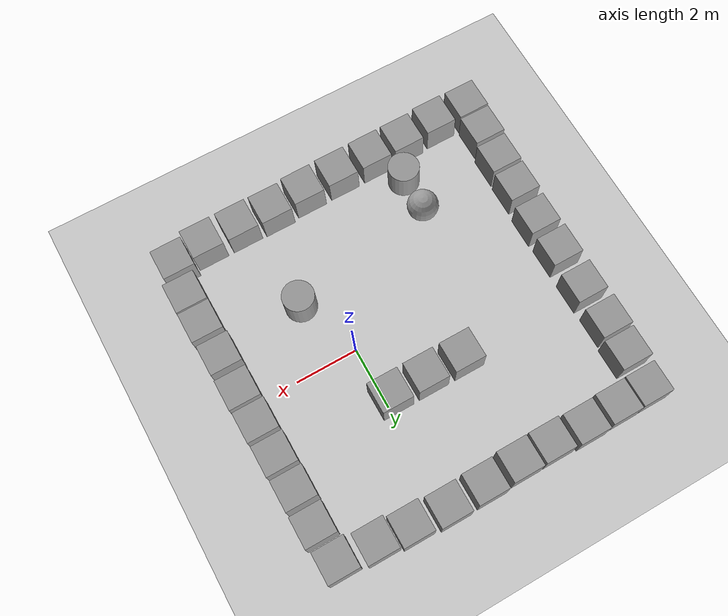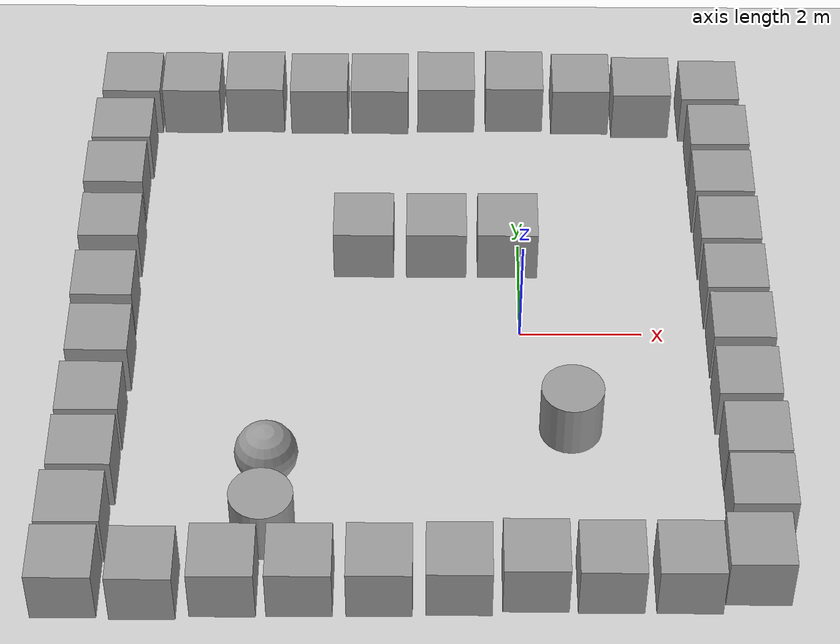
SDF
<sdf version="1.6">
 <world name="default">
  <model name="ground_plane">
   <static>1</static>
   <link name="link">
    <collision name="collision">
     <geometry><plane><normal>0 0 1</normal><size>100 100</size></plane></geometry>
     <surface>
      <contact><collide_bitmask>65535</collide_bitmask></contact>
      <friction><ode><mu>100</mu><mu2>50</mu2></ode></friction>
     </surface>
    </collision>
    <visual name="visual">
     <cast_shadows>0</cast_shadows>
     <geometry><plane><normal>0 0 1</normal><size>100 100</size></plane></geometry>
     <material>
      <script><uri>file://media/materials/scripts/gazebo.material</uri><name>Gazebo/Grey</name></script>
     </material>
    </visual>
   </link>
  </model>
  <light name="sun" type="directional">
   <pose>0 0 10 0 -0 0</pose>
   <diffuse>0.8 0.8 0.8 1</diffuse>
   <specular>0.2 0.2 0.2 1</specular>
   <attenuation>
    <range>1000</range>
    <constant>0.9</constant>
    <linear>0.01</linear>
    <quadratic>0.001</quadratic>
   </attenuation>
   <direction>-0.5 0.1 -0.9</direction>
  </light>
  <gravity>0 0 -9.8</gravity>
  <magnetic_field>6e-06 2.3e-05 -4.2e-05</magnetic_field>
  <atmosphere type="adiabatic"/>
  <physics name="default_physics" default="0" type="ode">
   <max_step_size>0.001</max_step_size>
   <real_time_factor>1</real_time_factor>
   <real_time_update_rate>1000</real_time_update_rate>
  </physics>
  <scene><ambient>0.4 0.4 0.4 1</ambient><background>0.7 0.7 0.7 1</background><shadows>1</shadows></scene>
  <audio><device>default</device></audio>
  <spherical_coordinates>
   <surface_model>EARTH_WGS84</surface_model>
   <latitude_deg>0</latitude_deg>
   <longitude_deg>0</longitude_deg>
   <elevation>0</elevation>
   <heading_deg>0</heading_deg>
  </spherical_coordinates>
  <model name="unit_box">
   <pose>-0.197704 1.77921 0.5 0 -0 0</pose>
   <link name="link">
    <inertial>
     <mass>1</mass>
     <inertia>
      <ixx>0.166667</ixx>
      <ixy>0</ixy>
      <ixz>0</ixz>
      <iyy>0.166667</iyy>
      <iyz>0</iyz>
      <izz>0.166667</izz>
     </inertia>
    </inertial>
    <collision name="collision"><geometry><box><size>1 1 1</size></box></geometry></collision>
    <visual name="visual">
     <geometry><box><size>1 1 1</size></box></geometry>
     <material>
      <script><name>Gazebo/Grey</name><uri>file://media/materials/scripts/gazebo.material</uri></script>
     </material>
    </visual>
   </link>
  </model>
  <model name="unit_cylinder">
   <pose>0.763981 -2.04884 0.499992 -3e-06 -4e-06 -0</pose>
   <link name="link">
    <inertial>
     <mass>1</mass>
     <inertia><ixx>0.145833</ixx><ixy>0</ixy><ixz>0</ixz><iyy>0.145833</iyy><iyz>0</iyz><izz>0.125</izz></inertia>
    </inertial>
    <collision name="collision">
     <geometry><cylinder><radius>0.5</radius><length>1</length></cylinder></geometry>
    </collision>
    <visual name="visual">
     <geometry><cylinder><radius>0.5</radius><length>1</length></cylinder></geometry>
     <material>
      <script><name>Gazebo/Grey</name><uri>file://media/materials/scripts/gazebo.material</uri></script>
     </material>
    </visual>
   </link>
  </model>
  <model name="unit_sphere">
   <pose>-4.03245 -2.96314 0.5 0 -0 0</pose>
   <link name="link">
    <inertial>
     <mass>1</mass>
     <inertia><ixx>0.1</ixx><ixy>0</ixy><ixz>0</ixz><iyy>0.1</iyy><iyz>0</iyz><izz>0.1</izz></inertia>
    </inertial>
    <collision name="collision"><geometry><sphere><radius>0.5</radius></sphere></geometry></collision>
    <visual name="visual">
     <geometry><sphere><radius>0.5</radius></sphere></geometry>
     <material>
      <script><name>Gazebo/Grey</name><uri>file://media/materials/scripts/gazebo.material</uri></script>
     </material>
    </visual>
   </link>
  </model>
  <model name="unit_box_0">
   <pose>-1.38779 1.77347 0.5 0 -0 0</pose>
   <link name="link">
    <inertial>
     <mass>1</mass>
     <inertia>
      <ixx>0.166667</ixx>
      <ixy>0</ixy>
      <ixz>0</ixz>
      <iyy>0.166667</iyy>
      <iyz>0</iyz>
      <izz>0.166667</izz>
     </inertia>
    </inertial>
    <collision name="collision"><geometry><box><size>1 1 1</size></box></geometry></collision>
    <visual name="visual">
     <geometry><box><size>1 1 1</size></box></geometry>
     <material>
      <script><name>Gazebo/Grey</name><uri>file://media/materials/scripts/gazebo.material</uri></script>
     </material>
    </visual>
   </link>
  </model>
  <model name="unit_box_1">
   <pose>-2.60241 1.77492 0.5 0 -0 0</pose>
   <link name="link">
    <inertial>
     <mass>1</mass>
     <inertia>
      <ixx>0.166667</ixx>
      <ixy>0</ixy>
      <ixz>0</ixz>
      <iyy>0.166667</iyy>
      <iyz>0</iyz>
      <izz>0.166667</izz>
     </inertia>
    </inertial>
    <collision name="collision"><geometry><box><size>1 1 1</size></box></geometry></collision>
    <visual name="visual">
     <geometry><box><size>1 1 1</size></box></geometry>
     <material>
      <script><name>Gazebo/Grey</name><uri>file://media/materials/scripts/gazebo.material</uri></script>
     </material>
    </visual>
   </link>
  </model>
  <model name="unit_box_2">
   <pose>3.55445 -0.448707 0.5 0 -0 0</pose>
   <link name="link">
    <inertial>
     <mass>1</mass>
     <inertia>
      <ixx>0.166667</ixx>
      <ixy>0</ixy>
      <ixz>0</ixz>
      <iyy>0.166667</iyy>
      <iyz>0</iyz>
      <izz>0.166667</izz>
     </inertia>
    </inertial>
    <collision name="collision"><geometry><box><size>1 1 1</size></box></geometry></collision>
    <visual name="visual">
     <geometry><box><size>1 1 1</size></box></geometry>
     <material>
      <script><name>Gazebo/Grey</name><uri>file://media/materials/scripts/gazebo.material</uri></script>
     </material>
    </visual>
   </link>
  </model>
  <model name="unit_box_3">
   <pose>3.52636 0.639737 0.5 0 -0 0</pose>
   <link name="link">
    <inertial>
     <mass>1</mass>
     <inertia>
      <ixx>0.166667</ixx>
      <ixy>0</ixy>
      <ixz>0</ixz>
      <iyy>0.166667</iyy>
      <iyz>0</iyz>
      <izz>0.166667</izz>
     </inertia>
    </inertial>
    <collision name="collision"><geometry><box><size>1 1 1</size></box></geometry></collision>
    <visual name="visual">
     <geometry><box><size>1 1 1</size></box></geometry>
     <material>
      <script><name>Gazebo/Grey</name><uri>file://media/materials/scripts/gazebo.material</uri></script>
     </material>
    </visual>
   </link>
  </model>
  <model name="unit_box_4">
   <pose>3.49864 1.75078 0.5 0 -0 0</pose>
   <link name="link">
    <inertial>
     <mass>1</mass>
     <inertia>
      <ixx>0.166667</ixx>
      <ixy>0</ixy>
      <ixz>0</ixz>
      <iyy>0.166667</iyy>
      <iyz>0</iyz>
      <izz>0.166667</izz>
     </inertia>
    </inertial>
    <collision name="collision"><geometry><box><size>1 1 1</size></box></geometry></collision>
    <visual name="visual">
     <geometry><box><size>1 1 1</size></box></geometry>
     <material>
      <script><name>Gazebo/Grey</name><uri>file://media/materials/scripts/gazebo.material</uri></script>
     </material>
    </visual>
   </link>
  </model>
  <model name="unit_box_5">
   <pose>3.47092 2.86175 0.5 0 -0 0</pose>
   <link name="link">
    <inertial>
     <mass>1</mass>
     <inertia>
      <ixx>0.166667</ixx>
      <ixy>0</ixy>
      <ixz>0</ixz>
      <iyy>0.166667</iyy>
      <iyz>0</iyz>
      <izz>0.166667</izz>
     </inertia>
    </inertial>
    <collision name="collision"><geometry><box><size>1 1 1</size></box></geometry></collision>
    <visual name="visual">
     <geometry><box><size>1 1 1</size></box></geometry>
     <material>
      <script><name>Gazebo/Grey</name><uri>file://media/materials/scripts/gazebo.material</uri></script>
     </material>
    </visual>
   </link>
  </model>
  <model name="unit_box_6">
   <pose>3.46785 4.00009 0.5 -0 -0 -0</pose>
   <link name="link">
    <inertial>
     <mass>1</mass>
     <inertia>
      <ixx>0.166667</ixx>
      <ixy>0</ixy>
      <ixz>0</ixz>
      <iyy>0.166667</iyy>
      <iyz>0</iyz>
      <izz>0.166667</izz>
     </inertia>
    </inertial>
    <collision name="collision"><geometry><box><size>1 1 1</size></box></geometry></collision>
    <visual name="visual">
     <geometry><box><size>1 1 1</size></box></geometry>
     <material>
      <script><name>Gazebo/Grey</name><uri>file://media/materials/scripts/gazebo.material</uri></script>
     </material>
    </visual>
   </link>
  </model>
  <model name="unit_box_7">
   <pose>3.37519 5.12977 0.5 -0 -0 -0</pose>
   <link name="link">
    <inertial>
     <mass>1</mass>
     <inertia>
      <ixx>0.166667</ixx>
      <ixy>0</ixy>
      <ixz>0</ixz>
      <iyy>0.166667</iyy>
      <iyz>0</iyz>
      <izz>0.166667</izz>
     </inertia>
    </inertial>
    <collision name="collision"><geometry><box><size>1 1 1</size></box></geometry></collision>
    <visual name="visual">
     <geometry><box><size>1 1 1</size></box></geometry>
     <material>
      <script><name>Gazebo/Grey</name><uri>file://media/materials/scripts/gazebo.material</uri></script>
     </material>
    </visual>
   </link>
  </model>
  <model name="unit_box_8">
   <pose>2.19768 5.21601 0.5 -0 -0 -0</pose>
   <link name="link">
    <inertial>
     <mass>1</mass>
     <inertia>
      <ixx>0.166667</ixx>
      <ixy>0</ixy>
      <ixz>0</ixz>
      <iyy>0.166667</iyy>
      <iyz>0</iyz>
      <izz>0.166667</izz>
     </inertia>
    </inertial>
    <collision name="collision"><geometry><box><size>1 1 1</size></box></geometry></collision>
    <visual name="visual">
     <geometry><box><size>1 1 1</size></box></geometry>
     <material>
      <script><name>Gazebo/Grey</name><uri>file://media/materials/scripts/gazebo.material</uri></script>
     </material>
    </visual>
   </link>
  </model>
  <model name="unit_box_9">
   <pose>1.13634 5.29939 0.5 0 -0 0</pose>
   <link name="link">
    <inertial>
     <mass>1</mass>
     <inertia>
      <ixx>0.166667</ixx>
      <ixy>0</ixy>
      <ixz>0</ixz>
      <iyy>0.166667</iyy>
      <iyz>0</iyz>
      <izz>0.166667</izz>
     </inertia>
    </inertial>
    <collision name="collision"><geometry><box><size>1 1 1</size></box></geometry></collision>
    <visual name="visual">
     <geometry><box><size>1 1 1</size></box></geometry>
     <material>
      <script><name>Gazebo/Grey</name><uri>file://media/materials/scripts/gazebo.material</uri></script>
     </material>
    </visual>
   </link>
  </model>
  <model name="unit_box_10">
   <pose>-0.025819 5.36379 0.5 0 -0 0</pose>
   <link name="link">
    <inertial>
     <mass>1</mass>
     <inertia>
      <ixx>0.166667</ixx>
      <ixy>0</ixy>
      <ixz>0</ixz>
      <iyy>0.166667</iyy>
      <iyz>0</iyz>
      <izz>0.166667</izz>
     </inertia>
    </inertial>
    <collision name="collision"><geometry><box><size>1 1 1</size></box></geometry></collision>
    <visual name="visual">
     <geometry><box><size>1 1 1</size></box></geometry>
     <material>
      <script><name>Gazebo/Grey</name><uri>file://media/materials/scripts/gazebo.material</uri></script>
     </material>
    </visual>
   </link>
  </model>
  <model name="unit_box_11">
   <pose>-1.2268 5.33765 0.5 0 -0 0</pose>
   <link name="link">
    <inertial>
     <mass>1</mass>
     <inertia>
      <ixx>0.166667</ixx>
      <ixy>0</ixy>
      <ixz>0</ixz>
      <iyy>0.166667</iyy>
      <iyz>0</iyz>
      <izz>0.166667</izz>
     </inertia>
    </inertial>
    <collision name="collision"><geometry><box><size>1 1 1</size></box></geometry></collision>
    <visual name="visual">
     <geometry><box><size>1 1 1</size></box></geometry>
     <material>
      <script><name>Gazebo/Grey</name><uri>file://media/materials/scripts/gazebo.material</uri></script>
     </material>
    </visual>
   </link>
  </model>
  <model name="unit_box_12">
   <pose>-2.39099 5.28828 0.5 0 -0 0</pose>
   <link name="link">
    <inertial>
     <mass>1</mass>
     <inertia>
      <ixx>0.166667</ixx>
      <ixy>0</ixy>
      <ixz>0</ixz>
      <iyy>0.166667</iyy>
      <iyz>0</iyz>
      <izz>0.166667</izz>
     </inertia>
    </inertial>
    <collision name="collision"><geometry><box><size>1 1 1</size></box></geometry></collision>
    <visual name="visual">
     <geometry><box><size>1 1 1</size></box></geometry>
     <material>
      <script><name>Gazebo/Grey</name><uri>file://media/materials/scripts/gazebo.material</uri></script>
     </material>
    </visual>
   </link>
  </model>
  <model name="unit_box_13">
   <pose>-3.45561 5.28239 0.5 0 -0 0</pose>
   <link name="link">
    <inertial>
     <mass>1</mass>
     <inertia>
      <ixx>0.166667</ixx>
      <ixy>0</ixy>
      <ixz>0</ixz>
      <iyy>0.166667</iyy>
      <iyz>0</iyz>
      <izz>0.166667</izz>
     </inertia>
    </inertial>
    <collision name="collision"><geometry><box><size>1 1 1</size></box></geometry></collision>
    <visual name="visual">
     <geometry><box><size>1 1 1</size></box></geometry>
     <material>
      <script><name>Gazebo/Grey</name><uri>file://media/materials/scripts/gazebo.material</uri></script>
     </material>
    </visual>
   </link>
  </model>
  <model name="unit_box_14">
   <pose>-4.58144 5.32082 0.5 -0 -0 -0</pose>
   <link name="link">
    <inertial>
     <mass>1</mass>
     <inertia>
      <ixx>0.166667</ixx>
      <ixy>0</ixy>
      <ixz>0</ixz>
      <iyy>0.166667</iyy>
      <iyz>0</iyz>
      <izz>0.166667</izz>
     </inertia>
    </inertial>
    <collision name="collision"><geometry><box><size>1 1 1</size></box></geometry></collision>
    <visual name="visual">
     <geometry><box><size>1 1 1</size></box></geometry>
     <material>
      <script><name>Gazebo/Grey</name><uri>file://media/materials/scripts/gazebo.material</uri></script>
     </material>
    </visual>
   </link>
  </model>
  <model name="unit_box_15">
   <pose>-5.692 5.29279 0.5 0 -0 0</pose>
   <link name="link">
    <inertial>
     <mass>1</mass>
     <inertia>
      <ixx>0.166667</ixx>
      <ixy>0</ixy>
      <ixz>0</ixz>
      <iyy>0.166667</iyy>
      <iyz>0</iyz>
      <izz>0.166667</izz>
     </inertia>
    </inertial>
    <collision name="collision"><geometry><box><size>1 1 1</size></box></geometry></collision>
    <visual name="visual">
     <geometry><box><size>1 1 1</size></box></geometry>
     <material>
      <script><name>Gazebo/Grey</name><uri>file://media/materials/scripts/gazebo.material</uri></script>
     </material>
    </visual>
   </link>
  </model>
  <model name="unit_box_16">
   <pose>-6.73412 5.28626 0.5 0 -0 0</pose>
   <link name="link">
    <inertial>
     <mass>1</mass>
     <inertia>
      <ixx>0.166667</ixx>
      <ixy>0</ixy>
      <ixz>0</ixz>
      <iyy>0.166667</iyy>
      <iyz>0</iyz>
      <izz>0.166667</izz>
     </inertia>
    </inertial>
    <collision name="collision"><geometry><box><size>1 1 1</size></box></geometry></collision>
    <visual name="visual">
     <geometry><box><size>1 1 1</size></box></geometry>
     <material>
      <script><name>Gazebo/Grey</name><uri>file://media/materials/scripts/gazebo.material</uri></script>
     </material>
    </visual>
   </link>
  </model>
  <model name="unit_box_17">
   <pose>-6.8132 4.10845 0.5 0 -0 0</pose>
   <link name="link">
    <inertial>
     <mass>1</mass>
     <inertia>
      <ixx>0.166667</ixx>
      <ixy>0</ixy>
      <ixz>0</ixz>
      <iyy>0.166667</iyy>
      <iyz>0</iyz>
      <izz>0.166667</izz>
     </inertia>
    </inertial>
    <collision name="collision"><geometry><box><size>1 1 1</size></box></geometry></collision>
    <visual name="visual">
     <geometry><box><size>1 1 1</size></box></geometry>
     <material>
      <script><name>Gazebo/Grey</name><uri>file://media/materials/scripts/gazebo.material</uri></script>
     </material>
    </visual>
   </link>
  </model>
  <model name="unit_box_18">
   <pose>-6.86062 3.0225 0.5 0 -0 0</pose>
   <link name="link">
    <inertial>
     <mass>1</mass>
     <inertia>
      <ixx>0.166667</ixx>
      <ixy>0</ixy>
      <ixz>0</ixz>
      <iyy>0.166667</iyy>
      <iyz>0</iyz>
      <izz>0.166667</izz>
     </inertia>
    </inertial>
    <collision name="collision"><geometry><box><size>1 1 1</size></box></geometry></collision>
    <visual name="visual">
     <geometry><box><size>1 1 1</size></box></geometry>
     <material>
      <script><name>Gazebo/Grey</name><uri>file://media/materials/scripts/gazebo.material</uri></script>
     </material>
    </visual>
   </link>
  </model>
  <model name="unit_cylinder_0">
   <pose>-4.04321 -4.18476 0.5 0 -0 0</pose>
   <link name="link">
    <inertial>
     <mass>1</mass>
     <inertia><ixx>0.145833</ixx><ixy>0</ixy><ixz>0</ixz><iyy>0.145833</iyy><iyz>0</iyz><izz>0.125</izz></inertia>
    </inertial>
    <collision name="collision">
     <geometry><cylinder><radius>0.5</radius><length>1</length></cylinder></geometry>
    </collision>
    <visual name="visual">
     <geometry><cylinder><radius>0.5</radius><length>1</length></cylinder></geometry>
     <material>
      <script><name>Gazebo/Grey</name><uri>file://media/materials/scripts/gazebo.material</uri></script>
     </material>
    </visual>
   </link>
  </model>
  <model name="unit_box_19">
   <pose>-6.8354 1.7534 0.5 0 -0 0</pose>
   <link name="link">
    <inertial>
     <mass>1</mass>
     <inertia>
      <ixx>0.166667</ixx>
      <ixy>0</ixy>
      <ixz>0</ixz>
      <iyy>0.166667</iyy>
      <iyz>0</iyz>
      <izz>0.166667</izz>
     </inertia>
    </inertial>
    <collision name="collision"><geometry><box><size>1 1 1</size></box></geometry></collision>
    <visual name="visual">
     <geometry><box><size>1 1 1</size></box></geometry>
     <material>
      <script><name>Gazebo/Grey</name><uri>file://media/materials/scripts/gazebo.material</uri></script>
     </material>
    </visual>
   </link>
  </model>
  <model name="unit_box_20">
   <pose>-6.83383 0.411005 0.5 0 -0 0</pose>
   <link name="link">
    <inertial>
     <mass>1</mass>
     <inertia>
      <ixx>0.166667</ixx>
      <ixy>0</ixy>
      <ixz>0</ixz>
      <iyy>0.166667</iyy>
      <iyz>0</iyz>
      <izz>0.166667</izz>
     </inertia>
    </inertial>
    <collision name="collision"><geometry><box><size>1 1 1</size></box></geometry></collision>
    <visual name="visual">
     <geometry><box><size>1 1 1</size></box></geometry>
     <material>
      <script><name>Gazebo/Grey</name><uri>file://media/materials/scripts/gazebo.material</uri></script>
     </material>
    </visual>
   </link>
  </model>
  <model name="unit_box_21">
   <pose>-6.8075 -0.790221 0.5 0 -0 0</pose>
   <link name="link">
    <inertial>
     <mass>1</mass>
     <inertia>
      <ixx>0.166667</ixx>
      <ixy>0</ixy>
      <ixz>0</ixz>
      <iyy>0.166667</iyy>
      <iyz>0</iyz>
      <izz>0.166667</izz>
     </inertia>
    </inertial>
    <collision name="collision"><geometry><box><size>1 1 1</size></box></geometry></collision>
    <visual name="visual">
     <geometry><box><size>1 1 1</size></box></geometry>
     <material>
      <script><name>Gazebo/Grey</name><uri>file://media/materials/scripts/gazebo.material</uri></script>
     </material>
    </visual>
   </link>
  </model>
  <model name="unit_box_22">
   <pose>-6.84991 -2.03575 0.5 0 -0 0</pose>
   <link name="link">
    <inertial>
     <mass>1</mass>
     <inertia>
      <ixx>0.166667</ixx>
      <ixy>0</ixy>
      <ixz>0</ixz>
      <iyy>0.166667</iyy>
      <iyz>0</iyz>
      <izz>0.166667</izz>
     </inertia>
    </inertial>
    <collision name="collision"><geometry><box><size>1 1 1</size></box></geometry></collision>
    <visual name="visual">
     <geometry><box><size>1 1 1</size></box></geometry>
     <material>
      <script><name>Gazebo/Grey</name><uri>file://media/materials/scripts/gazebo.material</uri></script>
     </material>
    </visual>
   </link>
  </model>
  <model name="unit_box_23">
   <pose>-6.8706 -3.13715 0.5 0 -0 0</pose>
   <link name="link">
    <inertial>
     <mass>1</mass>
     <inertia>
      <ixx>0.166667</ixx>
      <ixy>0</ixy>
      <ixz>0</ixz>
      <iyy>0.166667</iyy>
      <iyz>0</iyz>
      <izz>0.166667</izz>
     </inertia>
    </inertial>
    <collision name="collision"><geometry><box><size>1 1 1</size></box></geometry></collision>
    <visual name="visual">
     <geometry><box><size>1 1 1</size></box></geometry>
     <material>
      <script><name>Gazebo/Grey</name><uri>file://media/materials/scripts/gazebo.material</uri></script>
     </material>
    </visual>
   </link>
  </model>
  <model name="unit_box_24">
   <pose>3.55773 -1.63281 0.5 0 -0 0</pose>
   <link name="link">
    <inertial>
     <mass>1</mass>
     <inertia>
      <ixx>0.166667</ixx>
      <ixy>0</ixy>
      <ixz>0</ixz>
      <iyy>0.166667</iyy>
      <iyz>0</iyz>
      <izz>0.166667</izz>
     </inertia>
    </inertial>
    <collision name="collision"><geometry><box><size>1 1 1</size></box></geometry></collision>
    <visual name="visual">
     <geometry><box><size>1 1 1</size></box></geometry>
     <material>
      <script><name>Gazebo/Grey</name><uri>file://media/materials/scripts/gazebo.material</uri></script>
     </material>
    </visual>
   </link>
  </model>
  <model name="unit_box_25">
   <pose>3.60753 -2.78952 0.5 0 -0 0</pose>
   <link name="link">
    <inertial>
     <mass>1</mass>
     <inertia>
      <ixx>0.166667</ixx>
      <ixy>0</ixy>
      <ixz>0</ixz>
      <iyy>0.166667</iyy>
      <iyz>0</iyz>
      <izz>0.166667</izz>
     </inertia>
    </inertial>
    <collision name="collision"><geometry><box><size>1 1 1</size></box></geometry></collision>
    <visual name="visual">
     <geometry><box><size>1 1 1</size></box></geometry>
     <material>
      <script><name>Gazebo/Grey</name><uri>file://media/materials/scripts/gazebo.material</uri></script>
     </material>
    </visual>
   </link>
  </model>
  <model name="unit_box_26">
   <pose>3.61353 -3.83214 0.5 0 -0 0</pose>
   <link name="link">
    <inertial>
     <mass>1</mass>
     <inertia>
      <ixx>0.166667</ixx>
      <ixy>0</ixy>
      <ixz>0</ixz>
      <iyy>0.166667</iyy>
      <iyz>0</iyz>
      <izz>0.166667</izz>
     </inertia>
    </inertial>
    <collision name="collision"><geometry><box><size>1 1 1</size></box></geometry></collision>
    <visual name="visual">
     <geometry><box><size>1 1 1</size></box></geometry>
     <material>
      <script><name>Gazebo/Grey</name><uri>file://media/materials/scripts/gazebo.material</uri></script>
     </material>
    </visual>
   </link>
  </model>
  <model name="unit_box_27">
   <pose>3.48204 -4.98585 0.5 0 -0 0</pose>
   <link name="link">
    <inertial>
     <mass>1</mass>
     <inertia>
      <ixx>0.166667</ixx>
      <ixy>0</ixy>
      <ixz>0</ixz>
      <iyy>0.166667</iyy>
      <iyz>0</iyz>
      <izz>0.166667</izz>
     </inertia>
    </inertial>
    <collision name="collision"><geometry><box><size>1 1 1</size></box></geometry></collision>
    <visual name="visual">
     <geometry><box><size>1 1 1</size></box></geometry>
     <material>
      <script><name>Gazebo/Grey</name><uri>file://media/materials/scripts/gazebo.material</uri></script>
     </material>
    </visual>
   </link>
  </model>
  <model name="unit_box_28">
   <pose>2.43681 -5.15059 0.5 0 -0 0</pose>
   <link name="link">
    <inertial>
     <mass>1</mass>
     <inertia>
      <ixx>0.166667</ixx>
      <ixy>0</ixy>
      <ixz>0</ixz>
      <iyy>0.166667</iyy>
      <iyz>0</iyz>
      <izz>0.166667</izz>
     </inertia>
    </inertial>
    <collision name="collision"><geometry><box><size>1 1 1</size></box></geometry></collision>
    <visual name="visual">
     <geometry><box><size>1 1 1</size></box></geometry>
     <material>
      <script><name>Gazebo/Grey</name><uri>file://media/materials/scripts/gazebo.material</uri></script>
     </material>
    </visual>
   </link>
  </model>
  <model name="unit_box_29">
   <pose>1.25786 -5.1545 0.5 0 -0 0</pose>
   <link name="link">
    <inertial>
     <mass>1</mass>
     <inertia>
      <ixx>0.166667</ixx>
      <ixy>0</ixy>
      <ixz>0</ixz>
      <iyy>0.166667</iyy>
      <iyz>0</iyz>
      <izz>0.166667</izz>
     </inertia>
    </inertial>
    <collision name="collision"><geometry><box><size>1 1 1</size></box></geometry></collision>
    <visual name="visual">
     <geometry><box><size>1 1 1</size></box></geometry>
     <material>
      <script><name>Gazebo/Grey</name><uri>file://media/materials/scripts/gazebo.material</uri></script>
     </material>
    </visual>
   </link>
  </model>
  <model name="unit_box_30">
   <pose>0.1251 -5.13663 0.5 0 -0 0</pose>
   <link name="link">
    <inertial>
     <mass>1</mass>
     <inertia>
      <ixx>0.166667</ixx>
      <ixy>0</ixy>
      <ixz>0</ixz>
      <iyy>0.166667</iyy>
      <iyz>0</iyz>
      <izz>0.166667</izz>
     </inertia>
    </inertial>
    <collision name="collision"><geometry><box><size>1 1 1</size></box></geometry></collision>
    <visual name="visual">
     <geometry><box><size>1 1 1</size></box></geometry>
     <material>
      <script><name>Gazebo/Grey</name><uri>file://media/materials/scripts/gazebo.material</uri></script>
     </material>
    </visual>
   </link>
  </model>
  <model name="unit_box_31">
   <pose>-1.03157 -5.20777 0.5 0 -0 0</pose>
   <link name="link">
    <inertial>
     <mass>1</mass>
     <inertia>
      <ixx>0.166667</ixx>
      <ixy>0</ixy>
      <ixz>0</ixz>
      <iyy>0.166667</iyy>
      <iyz>0</iyz>
      <izz>0.166667</izz>
     </inertia>
    </inertial>
    <collision name="collision"><geometry><box><size>1 1 1</size></box></geometry></collision>
    <visual name="visual">
     <geometry><box><size>1 1 1</size></box></geometry>
     <material>
      <script><name>Gazebo/Grey</name><uri>file://media/materials/scripts/gazebo.material</uri></script>
     </material>
    </visual>
   </link>
  </model>
  <model name="unit_box_32">
   <pose>-2.2282 -5.23378 0.5 0 -0 0</pose>
   <link name="link">
    <inertial>
     <mass>1</mass>
     <inertia>
      <ixx>0.166667</ixx>
      <ixy>0</ixy>
      <ixz>0</ixz>
      <iyy>0.166667</iyy>
      <iyz>0</iyz>
      <izz>0.166667</izz>
     </inertia>
    </inertial>
    <collision name="collision"><geometry><box><size>1 1 1</size></box></geometry></collision>
    <visual name="visual">
     <geometry><box><size>1 1 1</size></box></geometry>
     <material>
      <script><name>Gazebo/Grey</name><uri>file://media/materials/scripts/gazebo.material</uri></script>
     </material>
    </visual>
   </link>
  </model>
  <model name="unit_box_33">
   <pose>-3.42801 -5.2459 0.5 0 -0 0</pose>
   <link name="link">
    <inertial>
     <mass>1</mass>
     <inertia>
      <ixx>0.166667</ixx>
      <ixy>0</ixy>
      <ixz>0</ixz>
      <iyy>0.166667</iyy>
      <iyz>0</iyz>
      <izz>0.166667</izz>
     </inertia>
    </inertial>
    <collision name="collision"><geometry><box><size>1 1 1</size></box></geometry></collision>
    <visual name="visual">
     <geometry><box><size>1 1 1</size></box></geometry>
     <material>
      <script><name>Gazebo/Grey</name><uri>file://media/materials/scripts/gazebo.material</uri></script>
     </material>
    </visual>
   </link>
  </model>
  <model name="unit_box_34">
   <pose>-4.58093 -5.25882 0.5 0 -0 0</pose>
   <link name="link">
    <inertial>
     <mass>1</mass>
     <inertia>
      <ixx>0.166667</ixx>
      <ixy>0</ixy>
      <ixz>0</ixz>
      <iyy>0.166667</iyy>
      <iyz>0</iyz>
      <izz>0.166667</izz>
     </inertia>
    </inertial>
    <collision name="collision"><geometry><box><size>1 1 1</size></box></geometry></collision>
    <visual name="visual">
     <geometry><box><size>1 1 1</size></box></geometry>
     <material>
      <script><name>Gazebo/Grey</name><uri>file://media/materials/scripts/gazebo.material</uri></script>
     </material>
    </visual>
   </link>
  </model>
  <model name="unit_box_35">
   <pose>-5.78117 -5.31768 0.5 0 -0 0</pose>
   <link name="link">
    <inertial>
     <mass>1</mass>
     <inertia>
      <ixx>0.166667</ixx>
      <ixy>0</ixy>
      <ixz>0</ixz>
      <iyy>0.166667</iyy>
      <iyz>0</iyz>
      <izz>0.166667</izz>
     </inertia>
    </inertial>
    <collision name="collision"><geometry><box><size>1 1 1</size></box></geometry></collision>
    <visual name="visual">
     <geometry><box><size>1 1 1</size></box></geometry>
     <material>
      <script><name>Gazebo/Grey</name><uri>file://media/materials/scripts/gazebo.material</uri></script>
     </material>
    </visual>
   </link>
  </model>
  <model name="unit_box_36">
   <pose>-6.9374 -4.24723 0.5 0 -0 0</pose>
   <link name="link">
    <inertial>
     <mass>1</mass>
     <inertia>
      <ixx>0.166667</ixx>
      <ixy>0</ixy>
      <ixz>0</ixz>
      <iyy>0.166667</iyy>
      <iyz>0</iyz>
      <izz>0.166667</izz>
     </inertia>
    </inertial>
    <collision name="collision"><geometry><box><size>1 1 1</size></box></geometry></collision>
    <visual name="visual">
     <geometry><box><size>1 1 1</size></box></geometry>
     <material>
      <script><name>Gazebo/Grey</name><uri>file://media/materials/scripts/gazebo.material</uri></script>
     </material>
    </visual>
   </link>
  </model>
  <model name="unit_box_37">
   <pose>-6.97069 -5.29365 0.5 0 -0 0</pose>
   <link name="link">
    <inertial>
     <mass>1</mass>
     <inertia>
      <ixx>0.166667</ixx>
      <ixy>0</ixy>
      <ixz>0</ixz>
      <iyy>0.166667</iyy>
      <iyz>0</iyz>
      <izz>0.166667</izz>
     </inertia>
    </inertial>
    <collision name="collision"><geometry><box><size>1 1 1</size></box></geometry></collision>
    <visual name="visual">
     <geometry><box><size>1 1 1</size></box></geometry>
     <material>
      <script><name>Gazebo/Grey</name><uri>file://media/materials/scripts/gazebo.material</uri></script>
     </material>
    </visual>
   </link>
  </model>
 </world>
</sdf>
